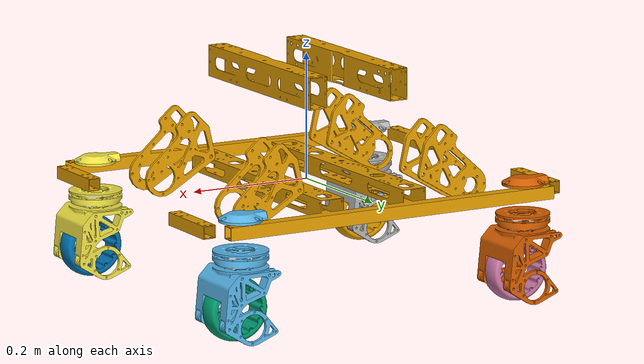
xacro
<?xml version="1.0"?>
<robot xmlns:xacro="http://www.ros.org/wiki/xacro" name="swerve">

    <xacro:arg name="load_chassis" default="true"/>
    <xacro:arg name="use_simulation" default="true"/>

    <xacro:if value="$(arg load_chassis)">
        <xacro:include filename="$(find rm_description)/urdf/swerve/chassis.urdf.xacro"/>
        <xacro:chassis/>
    </xacro:if>

    <xacro:if value="$(arg use_simulation)">
        <gazebo>
            <plugin name="rm_ros_control" filename="librm_robot_hw_sim.so">
                <robotNamespace>/</robotNamespace>
                <robotSimType>rm_gazebo/RmRobotHWSim</robotSimType>
            </plugin>
        </gazebo>
    </xacro:if>

</robot>

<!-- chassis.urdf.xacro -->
<robot xmlns:xacro="http://www.ros.org/wiki/xacro">

    <xacro:include filename="$(find rm_description)/urdf/common/swerve_drive.urdf.xacro"/>
    <!-- https://upload.wikimedia.org/wikipedia/commons/5/52/Wheelbase_and_Track.png -->
    <xacro:property name="wheel_track" value="0.500"/>
    <xacro:property name="wheel_base" value="0.475"/>
    <xacro:property name="wheel_offset_z" value="-0.036"/>

    <xacro:macro name="chassis">

        <link name="base_link">
            <inertial>
                <mass value="19.31"/>
                <origin xyz="-0.02282 0.002773 0.008173"/>
                <inertia ixx="4.041e-1" ixy="7.617e-3" ixz="-1.317e-2" iyy="3.322e-1"
                         iyz="7.985e-2" izz="1.8e-1"/>
            </inertial>
            <visual>
                <origin xyz="0 0 0" rpy="0 0 0"/>
                <geometry>
                    <mesh filename="package://rm_description/meshes/hero/base.stl" scale="0.001 .001 0.001"/>
                </geometry>
            </visual>
            <collision>
                <origin xyz="0 0 0" rpy="0 0 0"/>
                <geometry>
                    <mesh filename="package://rm_description/meshes/hero/base.stl" scale="0.001 0.001 0.001"/>
                </geometry>
            </collision>
        </link>

        <xacro:swerve_drive prefix="left_front" connected_to="base_link"
                            wheel_x_offset="${wheel_track/2}" wheel_y_offset="${wheel_base/2}"
                            wheel_z_offset="${wheel_offset_z}"/>
        <xacro:swerve_drive prefix="right_front" connected_to="base_link"
                            wheel_x_offset="${wheel_track/2}" wheel_y_offset="${-wheel_base/2}"
                            wheel_z_offset="${wheel_offset_z}"/>
        <xacro:swerve_drive prefix="left_back" connected_to="base_link"
                            wheel_x_offset="${-wheel_track/2}" wheel_y_offset="${wheel_base/2}"
                            wheel_z_offset="${wheel_offset_z}"/>
        <xacro:swerve_drive prefix="right_back" connected_to="base_link"
                            wheel_x_offset="${-wheel_track/2}" wheel_y_offset="${-wheel_base/2}"
                            wheel_z_offset="${wheel_offset_z}"/>

        <xacro:swerve_transmission prefix="left_front" wheel_reduction="1"/>
        <xacro:swerve_transmission prefix="right_front" wheel_reduction="-1"/>
        <xacro:swerve_transmission prefix="left_back" wheel_reduction="1"/>
        <xacro:swerve_transmission prefix="right_back" wheel_reduction="-1"/>
    </xacro:macro>

</robot>

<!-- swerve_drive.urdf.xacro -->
<robot xmlns:xacro="http://www.ros.org/wiki/xacro">

    <xacro:macro name="swerve_drive" params="prefix wheel_x_offset wheel_y_offset wheel_z_offset  connected_to">

        <link name="${prefix}_pivot">
            <visual>
                <origin xyz="0 0 0" rpy="0 0 0"/>
                <geometry>
                    <mesh filename="package://rm_description/meshes/common/swerve_pivot.stl"
                          scale="0.001 0.001 0.001"/>
                </geometry>
            </visual>
            <inertial>
                <mass value="2.819"/>
                <origin xyz="0. 0.0 0.004" rpy="0 0 0"/>
                <inertia ixx="3.904e-3" ixy="3.689e-6" ixz="-9.096e-6" iyy="3.847e-3" iyz="-9.129e-5" izz="1.952e-3"/>
            </inertial>
            <collision>
                <origin xyz="0 0 0" rpy="0 0 0"/>
                <geometry>
                    <mesh filename="package://rm_description/meshes/common/swerve_pivot.stl"
                          scale="0.001 0.001 0.001"/>
                </geometry>
            </collision>
        </link>

        <joint name="${prefix}_pivot_joint" type="continuous">
            <axis xyz="0 0 1"/>
            <origin xyz="${wheel_x_offset} ${wheel_y_offset} ${wheel_z_offset}" rpy="0 0 0"/>
            <parent link="${connected_to}"/>
            <child link="${prefix}_pivot"/>
        </joint>

        <link name="${prefix}_wheel">
            <visual>
                <origin xyz="0 0 0" rpy="0 0 0"/>
                <geometry>
                    <mesh filename="package://rm_description/meshes/common/swerve_wheel.stl"
                          scale="0.001 0.001 0.001"/>
                </geometry>
            </visual>
            <inertial>
                <mass value="0.213"/>
                <origin xyz="0 -0.007 0.0" rpy="0 0 0"/>
                <inertia ixx="2.012e-4" ixy="0" ixz="0" iyy="2.618e-4" iyz="8.07e-7" izz="2.002e-4"/>
            </inertial>
            <collision>
                <origin xyz="0 0 0" rpy="0 0 0"/>
                <geometry>
                    <mesh filename="package://rm_description/meshes/common/swerve_wheel.stl"
                          scale="0.001 0.001 0.001"/>
                </geometry>
            </collision>
        </link>

        <joint name="${prefix}_wheel_joint" type="continuous">
            <axis xyz="0 1 0"/>
            <origin xyz="0 -0.001 -0.094" rpy="0 0 0"/>
            <parent link="${prefix}_pivot"/>
            <child link="${prefix}_wheel"/>
        </joint>

    </xacro:macro>

    <xacro:macro name="swerve_transmission" params="prefix wheel_reduction">

        <transmission name="${prefix}_pivot_trans">
            <type>transmission_interface/SimpleTransmission</type>
            <actuator name="${prefix}_pivot_motor">
                <mechanicalReduction>1</mechanicalReduction>
            </actuator>
            <joint name="${prefix}_pivot_joint">
                <hardwareInterface>hardware_interface/EffortJointInterface</hardwareInterface>
            </joint>
        </transmission>

        <transmission name="${prefix}_wheel_trans">
            <type>transmission_interface/SimpleTransmission</type>
            <actuator name="${prefix}_wheel_motor">
                <mechanicalReduction>${wheel_reduction}</mechanicalReduction>
            </actuator>
            <joint name="${prefix}_wheel_joint">
                <hardwareInterface>hardware_interface/EffortJointInterface</hardwareInterface>
            </joint>
        </transmission>
    </xacro:macro>

</robot>
